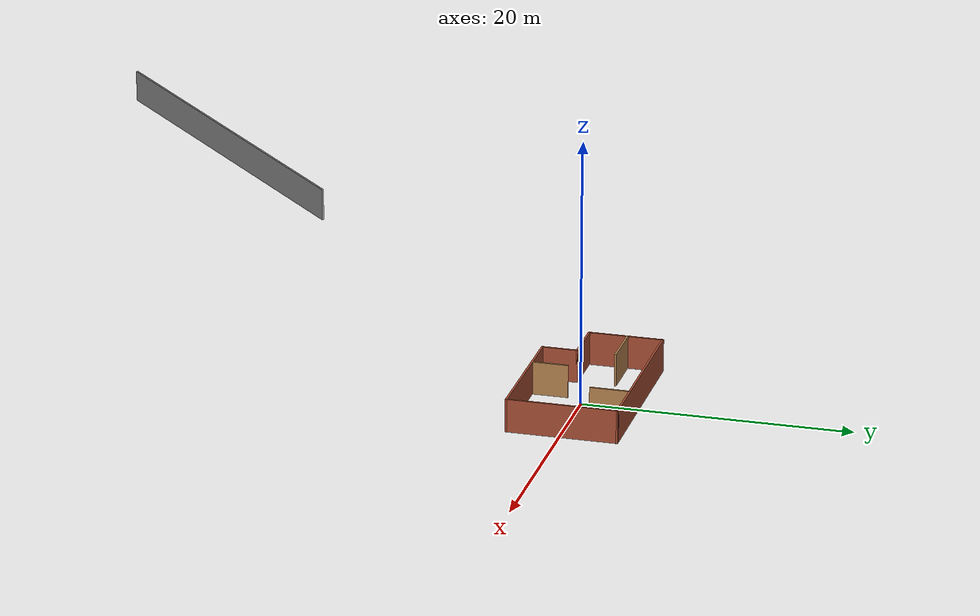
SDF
<?xml version='1.0'?>
<sdf version='1.7'>
  <model name='home'>
    <pose>-23.5787 -23.4225 0 0 -0 0</pose>
    <link name='Wall_0'>
      <collision name='Wall_0_Collision'>
        <geometry>
          <box>
            <size>32 0.15 2.5</size>
          </box>
        </geometry>
        <pose>0 0 1.25 0 -0 0</pose>
      </collision>
      <visual name='Wall_0_Visual'>
        <pose>0 0 1.25 0 -0 0</pose>
        <geometry>
          <box>
            <size>32 0.15 2.5</size>
          </box>
        </geometry>
        <material>
          <script>
            <uri>file://media/materials/scripts/gazebo.material</uri>
            <name>Gazebo/Grey</name>
          </script>
          <ambient>1 1 1 1</ambient>
        </material>
        <meta>
          <layer>0</layer>
        </meta>
      </visual>
      <pose>-18.5974 -16.3462 0 0 -0 0.785398</pose>
    </link>
    <link name='Wall_14'>
      <collision name='Wall_14_Collision'>
        <geometry>
          <box>
            <size>2.75 0.15 2.5</size>
          </box>
        </geometry>
        <pose>0 0 1.25 0 -0 0</pose>
      </collision>
      <visual name='Wall_14_Visual'>
        <pose>0 0 1.25 0 -0 0</pose>
        <geometry>
          <box>
            <size>2.75 0.15 2.5</size>
          </box>
        </geometry>
        <material>
          <script>
            <uri>file://media/materials/scripts/gazebo.material</uri>
            <name>Gazebo/Wood</name>
          </script>
          <ambient>1 1 1 1</ambient>
        </material>
        <meta>
          <layer>0</layer>
        </meta>
      </visual>
      <pose>22.611 20.8524 0 0 -0 1.5708</pose>
    </link>
    <link name='Wall_16'>
      <collision name='Wall_16_Collision'>
        <geometry>
          <box>
            <size>3 0.15 2.5</size>
          </box>
        </geometry>
        <pose>0 0 1.25 0 -0 0</pose>
      </collision>
      <visual name='Wall_16_Visual'>
        <pose>0 0 1.25 0 -0 0</pose>
        <geometry>
          <box>
            <size>3 0.15 2.5</size>
          </box>
        </geometry>
        <material>
          <script>
            <uri>file://media/materials/scripts/gazebo.material</uri>
            <name>Gazebo/Wood</name>
          </script>
          <ambient>1 1 1 1</ambient>
        </material>
        <meta>
          <layer>0</layer>
        </meta>
      </visual>
      <pose>26.1871 26.1971 0 0 -0 -1.5708</pose>
    </link>
    <link name='Wall_18'>
      <collision name='Wall_18_Collision'>
        <geometry>
          <box>
            <size>2.75 0.15 2.5</size>
          </box>
        </geometry>
        <pose>0 0 1.25 0 -0 0</pose>
      </collision>
      <visual name='Wall_18_Visual'>
        <pose>0 0 1.25 0 -0 0</pose>
        <geometry>
          <box>
            <size>2.75 0.15 2.5</size>
          </box>
        </geometry>
        <material>
          <script>
            <uri>file://media/materials/scripts/gazebo.material</uri>
            <name>Gazebo/Bricks</name>
          </script>
          <ambient>1 1 1 1</ambient>
        </material>
        <meta>
          <layer>0</layer>
        </meta>
      </visual>
      <pose>19.6479 20.8379 0 0 -0 1.5708</pose>
    </link>
    <link name='Wall_19'>
      <collision name='Wall_19_Collision'>
        <geometry>
          <box>
            <size>3.75 0.15 2.5</size>
          </box>
        </geometry>
        <pose>0 0 1.25 0 -0 0</pose>
      </collision>
      <visual name='Wall_19_Visual'>
        <pose>0 0 1.25 0 -0 0</pose>
        <geometry>
          <box>
            <size>3.75 0.15 2.5</size>
          </box>
        </geometry>
        <material>
          <script>
            <uri>file://media/materials/scripts/gazebo.material</uri>
            <name>Gazebo/Bricks</name>
          </script>
          <ambient>1 1 1 1</ambient>
        </material>
        <meta>
          <layer>0</layer>
        </meta>
      </visual>
      <pose>17.8479 22.1379 0 0 -0 3.14159</pose>
    </link>
    <link name='Wall_2'>
      <collision name='Wall_2_Collision'>
        <geometry>
          <box>
            <size>10.3915 0.15 2.5</size>
          </box>
        </geometry>
        <pose>0 0 1.25 0 -0 0</pose>
      </collision>
      <visual name='Wall_2_Visual'>
        <pose>0 0 1.25 0 -0 0</pose>
        <geometry>
          <box>
            <size>10.3915 0.15 2.5</size>
          </box>
        </geometry>
        <material>
          <script>
            <uri>file://media/materials/scripts/gazebo.material</uri>
            <name>Gazebo/Bricks</name>
          </script>
          <ambient>1 1 1 1</ambient>
        </material>
        <meta>
          <layer>0</layer>
        </meta>
      </visual>
      <pose>24.7684 19.5379 0 0 -0 0</pose>
    </link>
    <link name='Wall_20'>
      <collision name='Wall_20_Collision'>
        <geometry>
          <box>
            <size>5.63417 0.15 2.5</size>
          </box>
        </geometry>
        <pose>0 0 1.25 0 -0 0</pose>
      </collision>
      <visual name='Wall_20_Visual'>
        <pose>0 0 1.25 0 -0 0</pose>
        <geometry>
          <box>
            <size>5.63417 0.15 2.5</size>
          </box>
        </geometry>
        <material>
          <script>
            <uri>file://media/materials/scripts/gazebo.material</uri>
            <name>Gazebo/Bricks</name>
          </script>
          <ambient>1 1 1 1</ambient>
        </material>
        <meta>
          <layer>0</layer>
        </meta>
      </visual>
      <pose>16.0475 24.88 0 0 -0 1.57095</pose>
    </link>
    <link name='Wall_22'>
      <collision name='Wall_22_Collision'>
        <geometry>
          <box>
            <size>3.75 0.15 2.5</size>
          </box>
        </geometry>
        <pose>0 0 1.25 0 -0 0</pose>
      </collision>
      <visual name='Wall_22_Visual'>
        <pose>0 0 1.25 0 -0 0</pose>
        <geometry>
          <box>
            <size>3.75 0.15 2.5</size>
          </box>
        </geometry>
        <material>
          <script>
            <uri>file://media/materials/scripts/gazebo.material</uri>
            <name>Gazebo/Wood</name>
          </script>
          <ambient>1 1 1 1</ambient>
        </material>
        <meta>
          <layer>0</layer>
        </meta>
      </visual>
      <pose>17.8411 25.0042 0 0 -0 0</pose>
    </link>
    <link name='Wall_4'>
      <collision name='Wall_4_Collision'>
        <geometry>
          <box>
            <size>8.25 0.15 2.5</size>
          </box>
        </geometry>
        <pose>0 0 1.25 0 -0 0</pose>
      </collision>
      <visual name='Wall_4_Visual'>
        <pose>0 0 1.25 0 -0 0</pose>
        <geometry>
          <box>
            <size>8.25 0.15 2.5</size>
          </box>
        </geometry>
        <material>
          <script>
            <uri>file://media/materials/scripts/gazebo.material</uri>
            <name>Gazebo/Bricks</name>
          </script>
          <ambient>1 1 1 1</ambient>
        </material>
        <meta>
          <layer>0</layer>
        </meta>
      </visual>
      <pose>29.8889 23.5879 0 0 -0 1.5708</pose>
    </link>
    <link name='Wall_5'>
      <collision name='Wall_5_Collision'>
        <geometry>
          <box>
            <size>13.9926 0.15 2.5</size>
          </box>
        </geometry>
        <pose>0 0 1.25 0 -0 0</pose>
      </collision>
      <visual name='Wall_5_Visual'>
        <pose>0 0 1.25 0 -0 0</pose>
        <geometry>
          <box>
            <size>13.9926 0.15 2.5</size>
          </box>
        </geometry>
        <material>
          <script>
            <uri>file://media/materials/scripts/gazebo.material</uri>
            <name>Gazebo/Bricks</name>
          </script>
          <ambient>1 1 1 1</ambient>
        </material>
        <meta>
          <layer>0</layer>
        </meta>
      </visual>
      <pose>22.9676 27.6354 0 0 -0 -3.14123</pose>
    </link>
    <static>1</static>
  </model>
</sdf>
